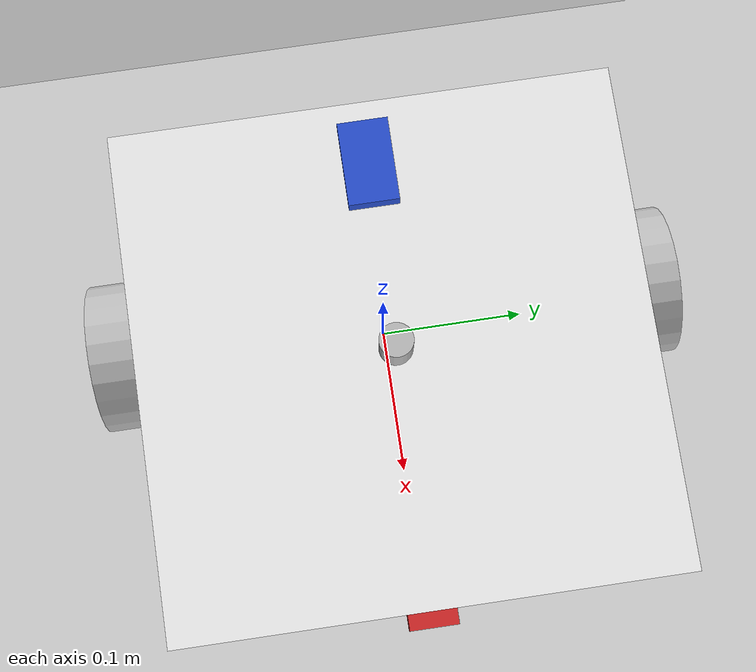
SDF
<sdf version="1.7">
 <world name="default">
  <light name="sun" type="directional">
   <pose>0 0 10 0 -0 0</pose>
   <diffuse>0.8 0.8 0.8 1</diffuse>
   <specular>0.2 0.2 0.2 1</specular>
   <attenuation>
    <range>1000</range>
    <constant>0.9</constant>
    <linear>0.01</linear>
    <quadratic>0.001</quadratic>
   </attenuation>
   <direction>-0.5 0.1 -0.9</direction>
   <spot><inner_angle>0</inner_angle><outer_angle>0</outer_angle><falloff>0</falloff></spot>
  </light>
  <model name="ground_plane">
   <static>1</static>
   <link name="link">
    <collision name="collision">
     <geometry><plane><normal>0 0 1</normal><size>100 100</size></plane></geometry>
     <surface>
      <contact><collide_bitmask>65535</collide_bitmask></contact>
      <friction><ode><mu>100</mu><mu2>50</mu2></ode></friction>
     </surface>
    </collision>
    <visual name="visual">
     <cast_shadows>0</cast_shadows>
     <geometry><plane><normal>0 0 1</normal><size>100 100</size></plane></geometry>
     <material>
      <script><uri>file://media/materials/scripts/gazebo.material</uri><name>Gazebo/Grey</name></script>
     </material>
    </visual>
   </link>
  </model>
  <spherical_coordinates>
   <surface_model>EARTH_WGS84</surface_model>
   <latitude_deg>37.4275</latitude_deg>
   <longitude_deg>-122.17</longitude_deg>
   <elevation>30</elevation>
   <heading_deg>0</heading_deg>
  </spherical_coordinates>
  <gravity>0 0 -9.8</gravity>
  <magnetic_field>6e-06 2.3e-05 -4.2e-05</magnetic_field>
  <atmosphere type="adiabatic"/>
  <physics type="ode">
   <max_step_size>0.001</max_step_size>
   <real_time_factor>1</real_time_factor>
   <real_time_update_rate>1000</real_time_update_rate>
  </physics>
  <scene><ambient>0.4 0.4 0.4 1</ambient><background>0.7 0.7 0.7 1</background><shadows>1</shadows></scene>
  <audio><device>default</device></audio>
  <model name="my_bot">
   <link name="base_link">
    <inertial>
     <pose>0.055385 0 0.069231 0 -0 0</pose>
     <mass>0.65</mass>
     <inertia>
      <ixx>0.00561503</ixx>
      <ixy>0</ixy>
      <ixz>0.00106731</ixz>
      <iyy>0.00701785</iyy>
      <iyz>0</iyz>
      <izz>0.00901032</izz>
     </inertia>
    </inertial>
    <collision name="base_link_fixed_joint_lump__chassis_collision">
     <pose>0.05 0 0.075 0 -0 0</pose>
     <geometry><box><size>0.3 0.3 0.15</size></box></geometry>
    </collision>
    <collision name="base_link_fixed_joint_lump__caster_wheel_collision_1">
     <pose>0.14 0 0 0 -0 0</pose>
     <geometry><sphere><radius>0.05</radius></sphere></geometry>
     <surface><friction><ode><mu>0.001</mu><mu2>0.001</mu2></ode></friction></surface>
    </collision>
    <collision name="base_link_fixed_joint_lump__imu_link_collision_2">
     <pose>-0.06 0 0.15 0 -0 0</pose>
     <geometry><box><size>0.05 0.03 0.02</size></box></geometry>
    </collision>
    <visual name="base_link_fixed_joint_lump__chassis_visual">
     <pose>0.05 0 0.075 0 -0 0</pose>
     <geometry><box><size>0.3 0.3 0.15</size></box></geometry>
     <material>
      <script><name>Gazebo/White</name><uri>file://media/materials/scripts/gazebo.material</uri></script>
     </material>
    </visual>
    <visual name="base_link_fixed_joint_lump__camera_link_visual_1">
     <pose>0.205 0 0.08 0 -0 0</pose>
     <geometry><box><size>0.01 0.03 0.03</size></box></geometry>
     <material>
      <script><name>Gazebo/Red</name><uri>file://media/materials/scripts/gazebo.material</uri></script>
     </material>
    </visual>
    <visual name="base_link_fixed_joint_lump__caster_wheel_visual_2">
     <pose>0.14 0 0 0 -0 0</pose>
     <geometry><sphere><radius>0.05</radius></sphere></geometry>
     <material>
      <script><name>Gazebo/Black</name><uri>file://media/materials/scripts/gazebo.material</uri></script>
     </material>
    </visual>
    <visual name="base_link_fixed_joint_lump__gps_link_visual_3">
     <pose>0.05 0 0.16 0 -0 0</pose>
     <geometry><cylinder><length>0.03</length><radius>0.01</radius></cylinder></geometry>
    </visual>
    <visual name="base_link_fixed_joint_lump__imu_link_visual_4">
     <pose>-0.06 0 0.15 0 -0 0</pose>
     <geometry><box><size>0.05 0.03 0.02</size></box></geometry>
     <material>
      <script><name>Gazebo/Blue</name><uri>file://media/materials/scripts/gazebo.material</uri></script>
     </material>
    </visual>
    <sensor name="camera" type="depth">
     <visualize>1</visualize>
     <update_rate>10</update_rate>
     <camera>
      <horizontal_fov>1.089</horizontal_fov>
      <image><format>R8G8B8</format><width>640</width><height>480</height></image>
      <clip><near>0.05</near><far>8</far></clip>
     </camera>
     <plugin name="camera_controller" filename="libgazebo_ros_camera.so">
      <frame_name>camera_link_optical</frame_name>
     </plugin>
     <pose>0.205 0 0.08 0 -0 0</pose>
    </sensor>
    <sensor name="gps" type="gps">
     <always_on>1</always_on>
     <update_rate>10</update_rate>
     <plugin name="gps_ros_plugin" filename="libgazebo_ros_gps_sensor.so">
      <ros><namespace>/gps</namespace><remapping>~/out:=data</remapping></ros>
     </plugin>
     <pose>0.05 0 0.16 0 -0 0</pose>
    </sensor>
    <sensor name="imu_sensor" type="imu">
     <always_on>1</always_on>
     <update_rate>50</update_rate>
     <plugin name="imu_controller" filename="libgazebo_ros_imu_sensor.so">
      <ros><argument>~/out:=imu/data</argument></ros>
      <output_type>sensor_msgs/Imu</output_type>
      <frame_name>imu_link</frame_name>
      <linear_acceleration_stddev>0.2</linear_acceleration_stddev>
      <angular_velocity_stddev>0.1</angular_velocity_stddev>
      <orientation_stddev>0.5</orientation_stddev>
     </plugin>
     <pose>-0.06 0 0.15 0 -0 0</pose>
    </sensor>
   </link>
   <joint name="left_wheel_joint" type="revolute">
    <pose relative_to="base_link">0 0.175 0 -1.5708 0 0</pose>
    <parent>base_link</parent>
    <child>left_wheel</child>
    <axis>
     <xyz>0 0 1</xyz>
     <limit><lower>-1e+16</lower><upper>1e+16</upper></limit>
     <dynamics><spring_reference>0</spring_reference><spring_stiffness>0</spring_stiffness></dynamics>
    </axis>
   </joint>
   <link name="left_wheel">
    <pose relative_to="left_wheel_joint">0 0 0 0 -0 0</pose>
    <inertial>
     <mass>0.1</mass>
     <inertia>
      <ixx>7.58333e-05</ixx>
      <ixy>0</ixy>
      <ixz>0</ixz>
      <iyy>7.58333e-05</iyy>
      <iyz>0</iyz>
      <izz>0.000125</izz>
     </inertia>
    </inertial>
    <collision name="left_wheel_collision">
     <geometry><cylinder><length>0.04</length><radius>0.05</radius></cylinder></geometry>
    </collision>
    <visual name="left_wheel_visual">
     <geometry><cylinder><length>0.04</length><radius>0.05</radius></cylinder></geometry>
    </visual>
   </link>
   <joint name="right_wheel_joint" type="revolute">
    <pose relative_to="base_link">0 -0.175 0 1.5708 -0 0</pose>
    <parent>base_link</parent>
    <child>right_wheel</child>
    <axis>
     <xyz>0 0 -1</xyz>
     <limit><lower>-1e+16</lower><upper>1e+16</upper></limit>
     <dynamics><spring_reference>0</spring_reference><spring_stiffness>0</spring_stiffness></dynamics>
    </axis>
   </joint>
   <link name="right_wheel">
    <pose relative_to="right_wheel_joint">0 0 0 0 -0 0</pose>
    <inertial>
     <mass>0.1</mass>
     <inertia>
      <ixx>7.58333e-05</ixx>
      <ixy>0</ixy>
      <ixz>0</ixz>
      <iyy>7.58333e-05</iyy>
      <iyz>0</iyz>
      <izz>0.000125</izz>
     </inertia>
    </inertial>
    <collision name="right_wheel_collision">
     <geometry><cylinder><length>0.04</length><radius>0.05</radius></cylinder></geometry>
    </collision>
    <visual name="right_wheel_visual">
     <geometry><cylinder><length>0.04</length><radius>0.05</radius></cylinder></geometry>
    </visual>
   </link>
   <static>0</static>
   <plugin name="diff_drive" filename="libgazebo_ros_diff_drive.so">
    <left_joint>left_wheel_joint</left_joint>
    <right_joint>right_wheel_joint</right_joint>
    <wheel_separation>0.35</wheel_separation>
    <wheel_diameter>0.1</wheel_diameter>
    <max_wheel_torque>200</max_wheel_torque>
    <max_wheel_acceleration>10.0</max_wheel_acceleration>
    <odometry_frame>odom</odometry_frame>
    <robot_base_frame>base_link</robot_base_frame>
    <publish_odom>1</publish_odom>
    <publish_odom_tf>1</publish_odom_tf>
    <publish_wheel_tf>1</publish_wheel_tf>
   </plugin>
   <pose>-6.5e-05 4e-06 0.05 0 1.3e-05 -5.7e-05</pose>
  </model>
  <model name="arena_obj">
   <link name="link_0">
    <inertial>
     <mass>1</mass>
     <inertia>
      <ixx>0.166667</ixx>
      <ixy>0</ixy>
      <ixz>0</ixz>
      <iyy>0.166667</iyy>
      <iyz>0</iyz>
      <izz>0.166667</izz>
     </inertia>
    </inertial>
    <pose>-0 0 0 1.57091 -0 0</pose>
    <visual name="visual">
     <geometry>
      <mesh><uri>/home/astrobotics/github/sim_platform/src/sim/models/arena.obj</uri><scale>1 1 1</scale></mesh>
     </geometry>
     <material>
      <lighting>1</lighting>
      <script><uri>file://media/materials/scripts/gazebo.material</uri><name>Gazebo/Grey</name></script>
      <shader type="pixel"/>
     </material>
    </visual>
    <collision name="collision">
     <geometry>
      <mesh><uri>/home/astrobotics/github/sim_platform/src/sim/models/arena.obj</uri><scale>1 1 1</scale></mesh>
     </geometry>
     <surface>
      <friction>
       <ode><mu>1</mu><mu2>1</mu2><fdir1>0 0 0</fdir1><slip1>0</slip1><slip2>0</slip2></ode>
       <torsional>
        <coefficient>1</coefficient>
        <patch_radius>0</patch_radius>
        <surface_radius>0</surface_radius>
        <use_patch_radius>1</use_patch_radius>
        <ode><slip>0</slip></ode>
       </torsional>
      </friction>
      <bounce><restitution_coefficient>0</restitution_coefficient><threshold>1e+06</threshold></bounce>
      <contact>
       <collide_without_contact>0</collide_without_contact>
       <collide_without_contact_bitmask>1</collide_without_contact_bitmask>
       <collide_bitmask>1</collide_bitmask>
       <ode>
        <soft_cfm>0</soft_cfm>
        <soft_erp>0.2</soft_erp>
        <kp>1e+13</kp>
        <kd>1</kd>
        <max_vel>0.01</max_vel>
        <min_depth>0</min_depth>
       </ode>
       <bullet>
        <split_impulse>1</split_impulse>
        <split_impulse_penetration_threshold>-0.01</split_impulse_penetration_threshold>
        <soft_cfm>0</soft_cfm>
        <soft_erp>0.2</soft_erp>
        <kp>1e+13</kp>
        <kd>1</kd>
       </bullet>
      </contact>
     </surface>
    </collision>
   </link>
   <static>0</static>
   <pose>-0.035375 0.071373 0.000138 0 -0 0</pose>
  </model>
 </world>
</sdf>
